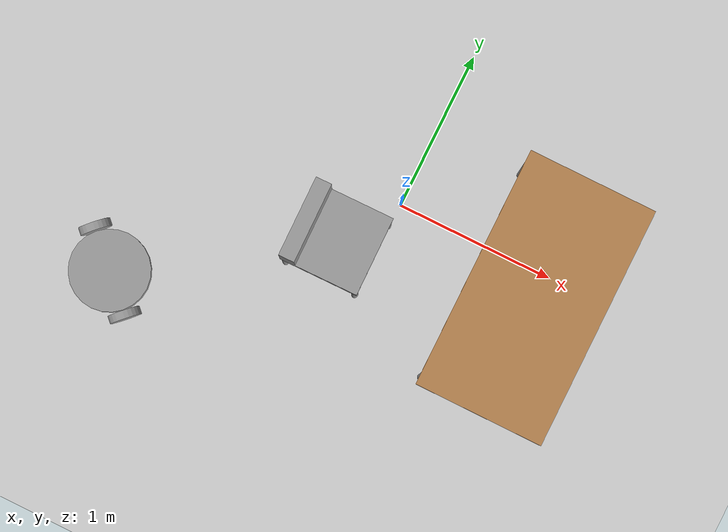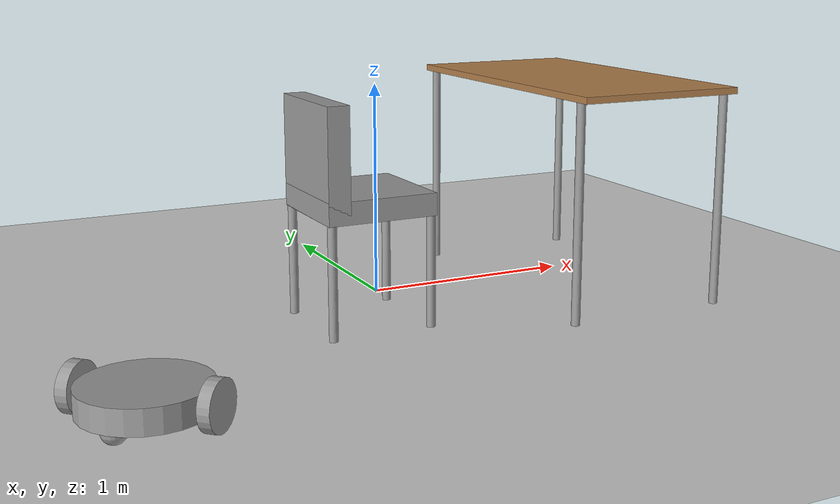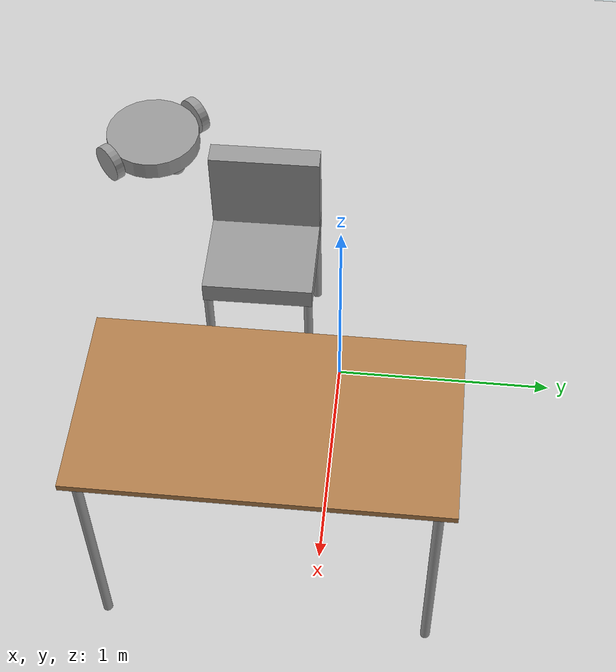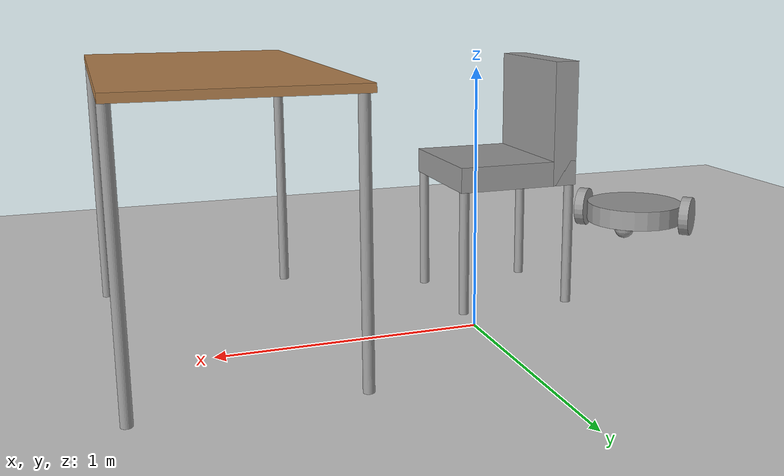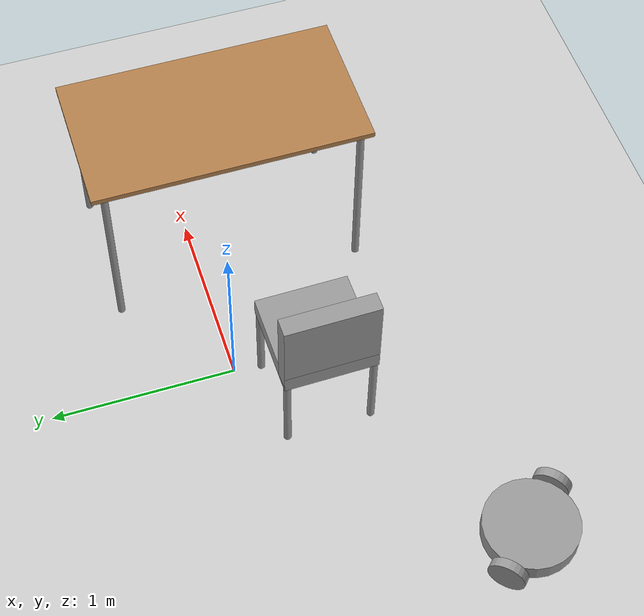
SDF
<sdf version="1.6">
 <world name="default">
  <model name="ground_plane">
   <static>1</static>
   <link name="link">
    <collision name="collision">
     <geometry><plane><normal>0 0 1</normal><size>100 100</size></plane></geometry>
     <surface>
      <contact><collide_bitmask>65535</collide_bitmask></contact>
      <friction><ode><mu>100</mu><mu2>50</mu2></ode></friction>
     </surface>
    </collision>
    <visual name="visual">
     <cast_shadows>0</cast_shadows>
     <geometry><plane><normal>0 0 1</normal><size>100 100</size></plane></geometry>
     <material>
      <script><uri>file://media/materials/scripts/gazebo.material</uri><name>Gazebo/Grey</name></script>
     </material>
    </visual>
   </link>
  </model>
  <model name="table_7">
   <static>1</static>
   <link name="link">
    <collision name="surface">
     <pose>0 0 1 0 -0 0</pose>
     <geometry><box><size>1.5 0.8 0.03</size></box></geometry>
     <surface><friction><ode><mu>0.6</mu><mu2>0.6</mu2></ode></friction></surface>
    </collision>
    <visual name="visual1">
     <pose>0 0 1 0 -0 0</pose>
     <geometry><box><size>1.5 0.8 0.03</size></box></geometry>
     <material>
      <script><uri>file://media/materials/scripts/gazebo.material</uri><name>Gazebo/Wood</name></script>
     </material>
    </visual>
    <collision name="front_left_leg">
     <pose>0.68 0.38 0.5 0 -0 0</pose>
     <geometry><cylinder><radius>0.02</radius><length>1</length></cylinder></geometry>
    </collision>
    <visual name="front_left_leg">
     <pose>0.68 0.38 0.5 0 -0 0</pose>
     <geometry><cylinder><radius>0.02</radius><length>1</length></cylinder></geometry>
     <material>
      <script><uri>file://media/materials/scripts/gazebo.material</uri><name>Gazebo/Grey</name></script>
     </material>
    </visual>
    <collision name="front_right_leg">
     <pose>0.68 -0.38 0.5 0 -0 0</pose>
     <geometry><cylinder><radius>0.02</radius><length>1</length></cylinder></geometry>
    </collision>
    <visual name="front_right_leg">
     <pose>0.68 -0.38 0.5 0 -0 0</pose>
     <geometry><cylinder><radius>0.02</radius><length>1</length></cylinder></geometry>
     <material>
      <script><uri>file://media/materials/scripts/gazebo.material</uri><name>Gazebo/Grey</name></script>
     </material>
    </visual>
    <collision name="back_right_leg">
     <pose>-0.68 -0.38 0.5 0 -0 0</pose>
     <geometry><cylinder><radius>0.02</radius><length>1</length></cylinder></geometry>
    </collision>
    <visual name="back_right_leg">
     <pose>-0.68 -0.38 0.5 0 -0 0</pose>
     <geometry><cylinder><radius>0.02</radius><length>1</length></cylinder></geometry>
     <material>
      <script><uri>file://media/materials/scripts/gazebo.material</uri><name>Gazebo/Grey</name></script>
     </material>
    </visual>
    <collision name="back_left_leg">
     <pose>-0.68 0.38 0.5 0 -0 0</pose>
     <geometry><cylinder><radius>0.02</radius><length>1</length></cylinder></geometry>
    </collision>
    <visual name="back_left_leg">
     <pose>-0.68 0.38 0.5 0 -0 0</pose>
     <geometry><cylinder><radius>0.02</radius><length>1</length></cylinder></geometry>
     <material>
      <script><uri>file://media/materials/scripts/gazebo.material</uri><name>Gazebo/Grey</name></script>
     </material>
    </visual>
   </link>
   <pose>0.946741 -0.198851 0 0 0 -1.5708</pose>
  </model>
  <model name="chair_7">
   <link name="link_0">
    <inertial>
     <mass>1</mass>
     <inertia><ixx>0.145833</ixx><ixy>0</ixy><ixz>0</ixz><iyy>0.145833</iyy><iyz>0</iyz><izz>0.125</izz></inertia>
    </inertial>
    <pose>-0.23 -0.19667 -0.280001 0 -0 0</pose>
    <visual name="visual">
     <geometry><cylinder><radius>0.02</radius><length>0.5</length></cylinder></geometry>
     <material>
      <lighting>1</lighting>
      <script><uri>file://media/materials/scripts/gazebo.material</uri><name>Gazebo/Grey</name></script>
      <shader type="vertex"><normal_map>__default__</normal_map></shader>
      <ambient>0.3 0.3 0.3 1</ambient>
      <diffuse>0.7 0.7 0.7 1</diffuse>
      <specular>0.01 0.01 0.01 1</specular>
      <emissive>0 0 0 1</emissive>
     </material>
    </visual>
    <collision name="collision">
     <geometry><cylinder><radius>0.02</radius><length>0.5</length></cylinder></geometry>
     <surface>
      <friction>
       <ode><mu>1</mu><mu2>1</mu2><fdir1>0 0 0</fdir1><slip1>0</slip1><slip2>0</slip2></ode>
       <torsional>
        <coefficient>1</coefficient>
        <patch_radius>0</patch_radius>
        <surface_radius>0</surface_radius>
        <use_patch_radius>1</use_patch_radius>
        <ode><slip>0</slip></ode>
       </torsional>
      </friction>
      <bounce><restitution_coefficient>0</restitution_coefficient><threshold>1e+06</threshold></bounce>
      <contact>
       <collide_without_contact>0</collide_without_contact>
       <collide_without_contact_bitmask>1</collide_without_contact_bitmask>
       <collide_bitmask>1</collide_bitmask>
       <ode>
        <soft_cfm>0</soft_cfm>
        <soft_erp>0.2</soft_erp>
        <kp>1e+13</kp>
        <kd>1</kd>
        <max_vel>0.01</max_vel>
        <min_depth>0</min_depth>
       </ode>
       <bullet>
        <split_impulse>1</split_impulse>
        <split_impulse_penetration_threshold>-0.01</split_impulse_penetration_threshold>
        <soft_cfm>0</soft_cfm>
        <soft_erp>0.2</soft_erp>
        <kp>1e+13</kp>
        <kd>1</kd>
       </bullet>
      </contact>
     </surface>
    </collision>
   </link>
   <link name="link_0_clone">
    <inertial>
     <mass>1</mass>
     <inertia><ixx>0.145833</ixx><ixy>0</ixy><ixz>0</ixz><iyy>0.145833</iyy><iyz>0</iyz><izz>0.125</izz></inertia>
    </inertial>
    <pose>0.23 -0.19667 -0.280001 0 -0 0</pose>
    <visual name="visual">
     <geometry><cylinder><radius>0.02</radius><length>0.5</length></cylinder></geometry>
     <material>
      <lighting>1</lighting>
      <script><uri>file://media/materials/scripts/gazebo.material</uri><name>Gazebo/Grey</name></script>
      <shader type="vertex"><normal_map>__default__</normal_map></shader>
      <ambient>0.3 0.3 0.3 1</ambient>
      <diffuse>0.7 0.7 0.7 1</diffuse>
      <specular>0.01 0.01 0.01 1</specular>
      <emissive>0 0 0 1</emissive>
     </material>
    </visual>
    <collision name="collision">
     <geometry><cylinder><radius>0.02</radius><length>0.5</length></cylinder></geometry>
     <surface>
      <friction>
       <ode><mu>1</mu><mu2>1</mu2><fdir1>0 0 0</fdir1><slip1>0</slip1><slip2>0</slip2></ode>
       <torsional>
        <coefficient>1</coefficient>
        <patch_radius>0</patch_radius>
        <surface_radius>0</surface_radius>
        <use_patch_radius>1</use_patch_radius>
        <ode><slip>0</slip></ode>
       </torsional>
      </friction>
      <bounce><restitution_coefficient>0</restitution_coefficient><threshold>1e+06</threshold></bounce>
      <contact>
       <collide_without_contact>0</collide_without_contact>
       <collide_without_contact_bitmask>1</collide_without_contact_bitmask>
       <collide_bitmask>1</collide_bitmask>
       <ode>
        <soft_cfm>0</soft_cfm>
        <soft_erp>0.2</soft_erp>
        <kp>1e+13</kp>
        <kd>1</kd>
        <max_vel>0.01</max_vel>
        <min_depth>0</min_depth>
       </ode>
       <bullet>
        <split_impulse>1</split_impulse>
        <split_impulse_penetration_threshold>-0.01</split_impulse_penetration_threshold>
        <soft_cfm>0</soft_cfm>
        <soft_erp>0.2</soft_erp>
        <kp>1e+13</kp>
        <kd>1</kd>
       </bullet>
      </contact>
     </surface>
    </collision>
   </link>
   <link name="link_0_clone_0">
    <inertial>
     <mass>1</mass>
     <inertia><ixx>0.145833</ixx><ixy>0</ixy><ixz>0</ixz><iyy>0.145833</iyy><iyz>0</iyz><izz>0.125</izz></inertia>
    </inertial>
    <pose>0.23 0.26333 -0.280001 0 -0 0</pose>
    <visual name="visual">
     <geometry><cylinder><radius>0.02</radius><length>0.5</length></cylinder></geometry>
     <material>
      <lighting>1</lighting>
      <script><uri>file://media/materials/scripts/gazebo.material</uri><name>Gazebo/Grey</name></script>
      <shader type="vertex"><normal_map>__default__</normal_map></shader>
      <ambient>0.3 0.3 0.3 1</ambient>
      <diffuse>0.7 0.7 0.7 1</diffuse>
      <specular>0.01 0.01 0.01 1</specular>
      <emissive>0 0 0 1</emissive>
     </material>
    </visual>
    <collision name="collision">
     <geometry><cylinder><radius>0.02</radius><length>0.5</length></cylinder></geometry>
     <surface>
      <friction>
       <ode><mu>1</mu><mu2>1</mu2><fdir1>0 0 0</fdir1><slip1>0</slip1><slip2>0</slip2></ode>
       <torsional>
        <coefficient>1</coefficient>
        <patch_radius>0</patch_radius>
        <surface_radius>0</surface_radius>
        <use_patch_radius>1</use_patch_radius>
        <ode><slip>0</slip></ode>
       </torsional>
      </friction>
      <bounce><restitution_coefficient>0</restitution_coefficient><threshold>1e+06</threshold></bounce>
      <contact>
       <collide_without_contact>0</collide_without_contact>
       <collide_without_contact_bitmask>1</collide_without_contact_bitmask>
       <collide_bitmask>1</collide_bitmask>
       <ode>
        <soft_cfm>0</soft_cfm>
        <soft_erp>0.2</soft_erp>
        <kp>1e+13</kp>
        <kd>1</kd>
        <max_vel>0.01</max_vel>
        <min_depth>0</min_depth>
       </ode>
       <bullet>
        <split_impulse>1</split_impulse>
        <split_impulse_penetration_threshold>-0.01</split_impulse_penetration_threshold>
        <soft_cfm>0</soft_cfm>
        <soft_erp>0.2</soft_erp>
        <kp>1e+13</kp>
        <kd>1</kd>
       </bullet>
      </contact>
     </surface>
    </collision>
   </link>
   <link name="link_0_clone_1">
    <inertial>
     <mass>1</mass>
     <inertia><ixx>0.145833</ixx><ixy>0</ixy><ixz>0</ixz><iyy>0.145833</iyy><iyz>0</iyz><izz>0.125</izz></inertia>
    </inertial>
    <pose>-0.23 0.26333 -0.280001 0 -0 0</pose>
    <visual name="visual">
     <geometry><cylinder><radius>0.02</radius><length>0.5</length></cylinder></geometry>
     <material>
      <lighting>1</lighting>
      <script><uri>file://media/materials/scripts/gazebo.material</uri><name>Gazebo/Grey</name></script>
      <shader type="vertex"><normal_map>__default__</normal_map></shader>
      <ambient>0.3 0.3 0.3 1</ambient>
      <diffuse>0.7 0.7 0.7 1</diffuse>
      <specular>0.01 0.01 0.01 1</specular>
      <emissive>0 0 0 1</emissive>
     </material>
    </visual>
    <collision name="collision">
     <geometry><cylinder><radius>0.02</radius><length>0.5</length></cylinder></geometry>
     <surface>
      <friction>
       <ode><mu>1</mu><mu2>1</mu2><fdir1>0 0 0</fdir1><slip1>0</slip1><slip2>0</slip2></ode>
       <torsional>
        <coefficient>1</coefficient>
        <patch_radius>0</patch_radius>
        <surface_radius>0</surface_radius>
        <use_patch_radius>1</use_patch_radius>
        <ode><slip>0</slip></ode>
       </torsional>
      </friction>
      <bounce><restitution_coefficient>0</restitution_coefficient><threshold>1e+06</threshold></bounce>
      <contact>
       <collide_without_contact>0</collide_without_contact>
       <collide_without_contact_bitmask>1</collide_without_contact_bitmask>
       <collide_bitmask>1</collide_bitmask>
       <ode>
        <soft_cfm>0</soft_cfm>
        <soft_erp>0.2</soft_erp>
        <kp>1e+13</kp>
        <kd>1</kd>
        <max_vel>0.01</max_vel>
        <min_depth>0</min_depth>
       </ode>
       <bullet>
        <split_impulse>1</split_impulse>
        <split_impulse_penetration_threshold>-0.01</split_impulse_penetration_threshold>
        <soft_cfm>0</soft_cfm>
        <soft_erp>0.2</soft_erp>
        <kp>1e+13</kp>
        <kd>1</kd>
       </bullet>
      </contact>
     </surface>
    </collision>
   </link>
   <link name="link_2">
    <inertial>
     <mass>1</mass>
     <inertia>
      <ixx>0.166667</ixx>
      <ixy>0</ixy>
      <ixz>0</ixz>
      <iyy>0.166667</iyy>
      <iyz>0</iyz>
      <izz>0.166667</izz>
     </inertia>
    </inertial>
    <pose>0 0.03333 0.019999 0 -0 0</pose>
    <visual name="visual">
     <geometry><box><size>0.5 0.5 0.1</size></box></geometry>
     <material>
      <lighting>1</lighting>
      <script><uri>file://media/materials/scripts/gazebo.material</uri><name>Gazebo/Grey</name></script>
      <shader type="vertex"><normal_map>__default__</normal_map></shader>
      <ambient>0.3 0.3 0.3 1</ambient>
      <diffuse>0.7 0.7 0.7 1</diffuse>
      <specular>0.01 0.01 0.01 1</specular>
      <emissive>0 0 0 1</emissive>
     </material>
    </visual>
    <collision name="collision">
     <geometry><box><size>0.5 0.5 0.1</size></box></geometry>
     <surface>
      <friction>
       <ode><mu>1</mu><mu2>1</mu2><fdir1>0 0 0</fdir1><slip1>0</slip1><slip2>0</slip2></ode>
       <torsional>
        <coefficient>1</coefficient>
        <patch_radius>0</patch_radius>
        <surface_radius>0</surface_radius>
        <use_patch_radius>1</use_patch_radius>
        <ode><slip>0</slip></ode>
       </torsional>
      </friction>
      <bounce><restitution_coefficient>0</restitution_coefficient><threshold>1e+06</threshold></bounce>
      <contact>
       <collide_without_contact>0</collide_without_contact>
       <collide_without_contact_bitmask>1</collide_without_contact_bitmask>
       <collide_bitmask>1</collide_bitmask>
       <ode>
        <soft_cfm>0</soft_cfm>
        <soft_erp>0.2</soft_erp>
        <kp>1e+13</kp>
        <kd>1</kd>
        <max_vel>0.01</max_vel>
        <min_depth>0</min_depth>
       </ode>
       <bullet>
        <split_impulse>1</split_impulse>
        <split_impulse_penetration_threshold>-0.01</split_impulse_penetration_threshold>
        <soft_cfm>0</soft_cfm>
        <soft_erp>0.2</soft_erp>
        <kp>1e+13</kp>
        <kd>1</kd>
       </bullet>
      </contact>
     </surface>
    </collision>
   </link>
   <link name="link_2_clone">
    <inertial>
     <mass>1</mass>
     <inertia>
      <ixx>0.166667</ixx>
      <ixy>0</ixy>
      <ixz>0</ixz>
      <iyy>0.166667</iyy>
      <iyz>0</iyz>
      <izz>0.166667</izz>
     </inertia>
    </inertial>
    <pose>0 -0.166646 0.220004 1.5707 -0 0</pose>
    <visual name="visual">
     <geometry><box><size>0.5 0.5 0.1</size></box></geometry>
     <material>
      <lighting>1</lighting>
      <script><uri>file://media/materials/scripts/gazebo.material</uri><name>Gazebo/Grey</name></script>
      <shader type="vertex"><normal_map>__default__</normal_map></shader>
      <ambient>0.3 0.3 0.3 1</ambient>
      <diffuse>0.7 0.7 0.7 1</diffuse>
      <specular>0.01 0.01 0.01 1</specular>
      <emissive>0 0 0 1</emissive>
     </material>
    </visual>
    <collision name="collision">
     <geometry><box><size>0.5 0.5 0.1</size></box></geometry>
     <surface>
      <friction>
       <ode><mu>1</mu><mu2>1</mu2><fdir1>0 0 0</fdir1><slip1>0</slip1><slip2>0</slip2></ode>
       <torsional>
        <coefficient>1</coefficient>
        <patch_radius>0</patch_radius>
        <surface_radius>0</surface_radius>
        <use_patch_radius>1</use_patch_radius>
        <ode><slip>0</slip></ode>
       </torsional>
      </friction>
      <bounce><restitution_coefficient>0</restitution_coefficient><threshold>1e+06</threshold></bounce>
      <contact>
       <collide_without_contact>0</collide_without_contact>
       <collide_without_contact_bitmask>1</collide_without_contact_bitmask>
       <collide_bitmask>1</collide_bitmask>
       <ode>
        <soft_cfm>0</soft_cfm>
        <soft_erp>0.2</soft_erp>
        <kp>1e+13</kp>
        <kd>1</kd>
        <max_vel>0.01</max_vel>
        <min_depth>0</min_depth>
       </ode>
       <bullet>
        <split_impulse>1</split_impulse>
        <split_impulse_penetration_threshold>-0.01</split_impulse_penetration_threshold>
        <soft_cfm>0</soft_cfm>
        <soft_erp>0.2</soft_erp>
        <kp>1e+13</kp>
        <kd>1</kd>
       </bullet>
      </contact>
     </surface>
    </collision>
   </link>
   <joint name="link_0_clone_JOINT_2" type="fixed">
    <parent>link_2</parent>
    <child>link_0_clone</child>
    <physics>
     <ode><limit><cfm>0</cfm><erp>0.2</erp></limit><suspension><cfm>0</cfm><erp>0.2</erp></suspension></ode>
    </physics>
   </joint>
   <joint name="link_2_JOINT_1" type="fixed">
    <parent>link_2</parent>
    <child>link_0</child>
    <physics>
     <ode><limit><cfm>0</cfm><erp>0.2</erp></limit><suspension><cfm>0</cfm><erp>0.2</erp></suspension></ode>
    </physics>
   </joint>
   <joint name="link_2_JOINT_3" type="fixed">
    <parent>link_2</parent>
    <child>link_0_clone_0</child>
    <physics>
     <ode><limit><cfm>0</cfm><erp>0.2</erp></limit><suspension><cfm>0</cfm><erp>0.2</erp></suspension></ode>
    </physics>
   </joint>
   <joint name="link_2_JOINT_4" type="fixed">
    <parent>link_2</parent>
    <child>link_0_clone_1</child>
    <physics>
     <ode><limit><cfm>0</cfm><erp>0.2</erp></limit><suspension><cfm>0</cfm><erp>0.2</erp></suspension></ode>
    </physics>
   </joint>
   <joint name="link_2_JOINT_5" type="fixed">
    <parent>link_2</parent>
    <child>link_2_clone</child>
    <physics>
     <ode><limit><cfm>0</cfm><erp>0.2</erp></limit><suspension><cfm>0</cfm><erp>0.2</erp></suspension></ode>
    </physics>
   </joint>
   <static>0</static>
   <pose>-0.27507 -0.381386 0.530001 2e-06 -0 -1.56009</pose>
  </model>
  <model name="udacity_bot_0">
   <link name="link_0">
    <inertial>
     <mass>1</mass>
     <inertia><ixx>0.145833</ixx><ixy>0</ixy><ixz>0</ixz><iyy>0.145833</iyy><iyz>0</iyz><izz>0.125</izz></inertia>
    </inertial>
    <pose>0.053998 0.039 -0.030999 0 -0 0</pose>
    <visual name="visual">
     <geometry><cylinder><radius>0.25</radius><length>0.1</length></cylinder></geometry>
     <material>
      <lighting>1</lighting>
      <script><uri>file://media/materials/scripts/gazebo.material</uri><name>Gazebo/Grey</name></script>
      <shader type="vertex"><normal_map>__default__</normal_map></shader>
      <ambient>0.3 0.3 0.3 1</ambient>
      <diffuse>0.7 0.7 0.7 1</diffuse>
      <specular>0.01 0.01 0.01 1</specular>
      <emissive>0 0 0 1</emissive>
     </material>
    </visual>
    <collision name="collision">
     <geometry><cylinder><radius>0.25</radius><length>0.1</length></cylinder></geometry>
     <surface>
      <friction>
       <ode><mu>1</mu><mu2>1</mu2><fdir1>0 0 0</fdir1><slip1>0</slip1><slip2>0</slip2></ode>
       <torsional>
        <coefficient>1</coefficient>
        <patch_radius>0</patch_radius>
        <surface_radius>0</surface_radius>
        <use_patch_radius>1</use_patch_radius>
        <ode><slip>0</slip></ode>
       </torsional>
      </friction>
      <bounce><restitution_coefficient>0</restitution_coefficient><threshold>1e+06</threshold></bounce>
      <contact>
       <collide_without_contact>0</collide_without_contact>
       <collide_without_contact_bitmask>1</collide_without_contact_bitmask>
       <collide_bitmask>1</collide_bitmask>
       <ode>
        <soft_cfm>0</soft_cfm>
        <soft_erp>0.2</soft_erp>
        <kp>1e+13</kp>
        <kd>1</kd>
        <max_vel>0.01</max_vel>
        <min_depth>0</min_depth>
       </ode>
       <bullet>
        <split_impulse>1</split_impulse>
        <split_impulse_penetration_threshold>-0.01</split_impulse_penetration_threshold>
        <soft_cfm>0</soft_cfm>
        <soft_erp>0.2</soft_erp>
        <kp>1e+13</kp>
        <kd>1</kd>
       </bullet>
      </contact>
     </surface>
    </collision>
   </link>
   <link name="link_3">
    <inertial>
     <mass>1</mass>
     <inertia><ixx>0.145833</ixx><ixy>0</ixy><ixz>0</ixz><iyy>0.145833</iyy><iyz>0</iyz><izz>0.125</izz></inertia>
    </inertial>
    <pose>-0.226002 0.039 -0.030999 0 1.5707 0</pose>
    <visual name="visual">
     <geometry><cylinder><radius>0.1</radius><length>0.05</length></cylinder></geometry>
     <material>
      <lighting>1</lighting>
      <script><uri>file://media/materials/scripts/gazebo.material</uri><name>Gazebo/Grey</name></script>
      <shader type="vertex"><normal_map>__default__</normal_map></shader>
      <ambient>0.3 0.3 0.3 1</ambient>
      <diffuse>0.7 0.7 0.7 1</diffuse>
      <specular>0.01 0.01 0.01 1</specular>
      <emissive>0 0 0 1</emissive>
     </material>
    </visual>
    <collision name="collision">
     <geometry><cylinder><radius>0.1</radius><length>0.05</length></cylinder></geometry>
     <surface>
      <friction>
       <ode><mu>1</mu><mu2>1</mu2><fdir1>0 0 0</fdir1><slip1>0</slip1><slip2>0</slip2></ode>
       <torsional>
        <coefficient>1</coefficient>
        <patch_radius>0</patch_radius>
        <surface_radius>0</surface_radius>
        <use_patch_radius>1</use_patch_radius>
        <ode><slip>0</slip></ode>
       </torsional>
      </friction>
      <bounce><restitution_coefficient>0</restitution_coefficient><threshold>1e+06</threshold></bounce>
      <contact>
       <collide_without_contact>0</collide_without_contact>
       <collide_without_contact_bitmask>1</collide_without_contact_bitmask>
       <collide_bitmask>1</collide_bitmask>
       <ode>
        <soft_cfm>0</soft_cfm>
        <soft_erp>0.2</soft_erp>
        <kp>1e+13</kp>
        <kd>1</kd>
        <max_vel>0.01</max_vel>
        <min_depth>0</min_depth>
       </ode>
       <bullet>
        <split_impulse>1</split_impulse>
        <split_impulse_penetration_threshold>-0.01</split_impulse_penetration_threshold>
        <soft_cfm>0</soft_cfm>
        <soft_erp>0.2</soft_erp>
        <kp>1e+13</kp>
        <kd>1</kd>
       </bullet>
      </contact>
     </surface>
    </collision>
   </link>
   <link name="link_3_clone">
    <inertial>
     <mass>1</mass>
     <inertia><ixx>0.145833</ixx><ixy>0</ixy><ixz>0</ixz><iyy>0.145833</iyy><iyz>0</iyz><izz>0.125</izz></inertia>
    </inertial>
    <pose>0.333998 0.039 -0.030999 0 1.5707 0</pose>
    <visual name="visual">
     <geometry><cylinder><radius>0.1</radius><length>0.05</length></cylinder></geometry>
     <material>
      <lighting>1</lighting>
      <script><uri>file://media/materials/scripts/gazebo.material</uri><name>Gazebo/Grey</name></script>
      <shader type="vertex"><normal_map>__default__</normal_map></shader>
      <ambient>0.3 0.3 0.3 1</ambient>
      <diffuse>0.7 0.7 0.7 1</diffuse>
      <specular>0.01 0.01 0.01 1</specular>
      <emissive>0 0 0 1</emissive>
     </material>
    </visual>
    <collision name="collision">
     <geometry><cylinder><radius>0.1</radius><length>0.05</length></cylinder></geometry>
     <surface>
      <friction>
       <ode><mu>1</mu><mu2>1</mu2><fdir1>0 0 0</fdir1><slip1>0</slip1><slip2>0</slip2></ode>
       <torsional>
        <coefficient>1</coefficient>
        <patch_radius>0</patch_radius>
        <surface_radius>0</surface_radius>
        <use_patch_radius>1</use_patch_radius>
        <ode><slip>0</slip></ode>
       </torsional>
      </friction>
      <bounce><restitution_coefficient>0</restitution_coefficient><threshold>1e+06</threshold></bounce>
      <contact>
       <collide_without_contact>0</collide_without_contact>
       <collide_without_contact_bitmask>1</collide_without_contact_bitmask>
       <collide_bitmask>1</collide_bitmask>
       <ode>
        <soft_cfm>0</soft_cfm>
        <soft_erp>0.2</soft_erp>
        <kp>1e+13</kp>
        <kd>1</kd>
        <max_vel>0.01</max_vel>
        <min_depth>0</min_depth>
       </ode>
       <bullet>
        <split_impulse>1</split_impulse>
        <split_impulse_penetration_threshold>-0.01</split_impulse_penetration_threshold>
        <soft_cfm>0</soft_cfm>
        <soft_erp>0.2</soft_erp>
        <kp>1e+13</kp>
        <kd>1</kd>
       </bullet>
      </contact>
     </surface>
    </collision>
   </link>
   <link name="link_4">
    <inertial>
     <mass>0.00024324</mass>
     <inertia><ixx>9e-08</ixx><ixy>0</ixy><ixz>0</ixz><iyy>9e-08</iyy><iyz>0</iyz><izz>9e-08</izz></inertia>
    </inertial>
    <pose>0.053998 0.239 -0.080999 -0.05 0 0</pose>
    <visual name="visual">
     <geometry><sphere><radius>0.05</radius></sphere></geometry>
     <material>
      <lighting>1</lighting>
      <script><uri>file://media/materials/scripts/gazebo.material</uri><name>Gazebo/Grey</name></script>
      <shader type="vertex"><normal_map>__default__</normal_map></shader>
      <ambient>0.3 0.3 0.3 1</ambient>
      <diffuse>0.7 0.7 0.7 1</diffuse>
      <specular>0.01 0.01 0.01 1</specular>
      <emissive>0 0 0 1</emissive>
     </material>
    </visual>
    <collision name="collision">
     <geometry><sphere><radius>0.05</radius></sphere></geometry>
     <surface>
      <friction>
       <ode><mu>1</mu><mu2>1</mu2><fdir1>0 0 0</fdir1><slip1>0</slip1><slip2>0</slip2></ode>
       <torsional>
        <coefficient>1</coefficient>
        <patch_radius>0</patch_radius>
        <surface_radius>0</surface_radius>
        <use_patch_radius>1</use_patch_radius>
        <ode><slip>0</slip></ode>
       </torsional>
      </friction>
      <bounce><restitution_coefficient>0</restitution_coefficient><threshold>1e+06</threshold></bounce>
      <contact>
       <collide_without_contact>0</collide_without_contact>
       <collide_without_contact_bitmask>1</collide_without_contact_bitmask>
       <collide_bitmask>1</collide_bitmask>
       <ode>
        <soft_cfm>0</soft_cfm>
        <soft_erp>0.2</soft_erp>
        <kp>1e+13</kp>
        <kd>1</kd>
        <max_vel>0.01</max_vel>
        <min_depth>0</min_depth>
       </ode>
       <bullet>
        <split_impulse>1</split_impulse>
        <split_impulse_penetration_threshold>-0.01</split_impulse_penetration_threshold>
        <soft_cfm>0</soft_cfm>
        <soft_erp>0.2</soft_erp>
        <kp>1e+13</kp>
        <kd>1</kd>
       </bullet>
      </contact>
     </surface>
    </collision>
   </link>
   <link name="link_4_clone">
    <inertial>
     <mass>0.00024324</mass>
     <inertia><ixx>9e-08</ixx><ixy>0</ixy><ixz>0</ixz><iyy>9e-08</iyy><iyz>0</iyz><izz>9e-08</izz></inertia>
    </inertial>
    <pose>0.053998 -0.161 -0.080999 0 -0 0</pose>
    <visual name="visual">
     <geometry><sphere><radius>0.05</radius></sphere></geometry>
     <material>
      <lighting>1</lighting>
      <script><uri>file://media/materials/scripts/gazebo.material</uri><name>Gazebo/Grey</name></script>
      <shader type="vertex"><normal_map>__default__</normal_map></shader>
      <ambient>0.3 0.3 0.3 1</ambient>
      <diffuse>0.7 0.7 0.7 1</diffuse>
      <specular>0.01 0.01 0.01 1</specular>
      <emissive>0 0 0 1</emissive>
     </material>
    </visual>
    <collision name="collision">
     <geometry><sphere><radius>0.05</radius></sphere></geometry>
     <surface>
      <friction>
       <ode><mu>1</mu><mu2>1</mu2><fdir1>0 0 0</fdir1><slip1>0</slip1><slip2>0</slip2></ode>
       <torsional>
        <coefficient>1</coefficient>
        <patch_radius>0</patch_radius>
        <surface_radius>0</surface_radius>
        <use_patch_radius>1</use_patch_radius>
        <ode><slip>0</slip></ode>
       </torsional>
      </friction>
      <bounce><restitution_coefficient>0</restitution_coefficient><threshold>1e+06</threshold></bounce>
      <contact>
       <collide_without_contact>0</collide_without_contact>
       <collide_without_contact_bitmask>1</collide_without_contact_bitmask>
       <collide_bitmask>1</collide_bitmask>
       <ode>
        <soft_cfm>0</soft_cfm>
        <soft_erp>0.2</soft_erp>
        <kp>1e+13</kp>
        <kd>1</kd>
        <max_vel>0.01</max_vel>
        <min_depth>0</min_depth>
       </ode>
       <bullet>
        <split_impulse>1</split_impulse>
        <split_impulse_penetration_threshold>-0.01</split_impulse_penetration_threshold>
        <soft_cfm>0</soft_cfm>
        <soft_erp>0.2</soft_erp>
        <kp>1e+13</kp>
        <kd>1</kd>
       </bullet>
      </contact>
     </surface>
    </collision>
   </link>
   <joint name="link_0_JOINT_1" type="revolute">
    <parent>link_0</parent>
    <child>link_3</child>
    <axis>
     <xyz>1 0 0</xyz>
     <use_parent_model_frame>0</use_parent_model_frame>
     <limit>
      <lower>-1.79769e+308</lower>
      <upper>1.79769e+308</upper>
      <effort>-1</effort>
      <velocity>-1</velocity>
     </limit>
     <dynamics>
      <spring_reference>0</spring_reference>
      <spring_stiffness>0</spring_stiffness>
      <damping>0</damping>
     </dynamics>
    </axis>
    <physics>
     <ode><limit><cfm>0</cfm><erp>0.2</erp></limit><suspension><cfm>0</cfm><erp>0.2</erp></suspension></ode>
    </physics>
   </joint>
   <joint name="link_0_JOINT_2" type="revolute">
    <parent>link_0</parent>
    <child>link_3_clone</child>
    <axis>
     <xyz>1 0 0</xyz>
     <use_parent_model_frame>0</use_parent_model_frame>
     <limit>
      <lower>-1.79769e+308</lower>
      <upper>1.79769e+308</upper>
      <effort>-1</effort>
      <velocity>-1</velocity>
     </limit>
     <dynamics>
      <spring_reference>0</spring_reference>
      <spring_stiffness>0</spring_stiffness>
      <damping>0</damping>
     </dynamics>
    </axis>
    <physics>
     <ode><limit><cfm>0</cfm><erp>0.2</erp></limit><suspension><cfm>0</cfm><erp>0.2</erp></suspension></ode>
    </physics>
   </joint>
   <joint name="link_0_JOINT_3" type="fixed">
    <parent>link_0</parent>
    <child>link_4</child>
    <physics>
     <ode><limit><cfm>0</cfm><erp>0.2</erp></limit><suspension><cfm>0</cfm><erp>0.2</erp></suspension></ode>
    </physics>
   </joint>
   <joint name="link_0_JOINT_4" type="revolute">
    <parent>link_0</parent>
    <child>link_4_clone</child>
    <axis>
     <xyz>1 0 0</xyz>
     <use_parent_model_frame>0</use_parent_model_frame>
     <limit>
      <lower>-1.79769e+308</lower>
      <upper>1.79769e+308</upper>
      <effort>-1</effort>
      <velocity>-1</velocity>
     </limit>
     <dynamics>
      <spring_reference>0</spring_reference>
      <spring_stiffness>0</spring_stiffness>
      <damping>0</damping>
     </dynamics>
    </axis>
    <physics>
     <ode><limit><cfm>0</cfm><erp>0.2</erp></limit><suspension><cfm>0</cfm><erp>0.2</erp></suspension></ode>
    </physics>
   </joint>
   <static>0</static>
   <pose>-1.45467 -1.12508 0.131007 -0.000198 8e-06 -0.785428</pose>
  </model>
 </world>
</sdf>
